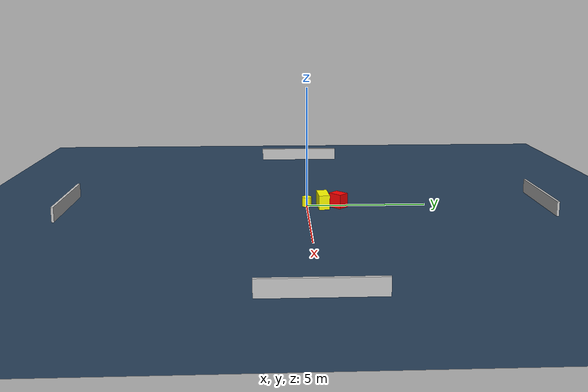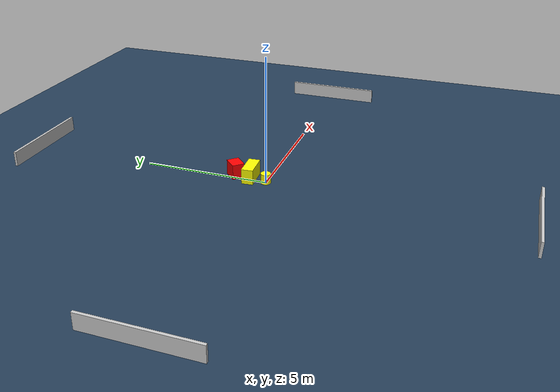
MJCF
<?xml version="1.0" ?>
<mujoco model="generated_environment">
  <option timestep="0.01" integrator="RK4" cone="elliptic"/>
  <default>
    <geom density="1"/>
  </default>
  <asset>
    <texture builtin="gradient" height="3072" name="skybox" rgb1="0.3 0.5 0.7" rgb2="0 0 0" type="skybox" width="512"/>
    <texture builtin="checker" height="300" name="groundplane" rgb1="0.2 0.3 0.4" rgb2="0.1 0.2 0.3" type="2d" width="300"/>
    <material name="groundplane" reflectance="0.2" texrepeat="5 5" texture="groundplane"/>
  </asset>
  <worldbody>
    <light dir="0 0 -1" directional="true" pos="0 0 1.5"/>
    <geom condim="3" friction="0.5 0.005 0.001" material="groundplane" name="floor" pos="0 0 0" size="0 0 0.05" type="plane"/>
    <body name="walls">
      <geom name="wall_1" condim="4" pos="-10.0 0.0 0.3" rgba="0.800000011920929 0.800000011920929 0.800000011920929 1.0" size="0.05 2.0 0.3" type="box"/>
      <geom name="wall_2" condim="4" pos="10.0 0.0 0.3" rgba="0.800000011920929 0.800000011920929 0.800000011920929 1.0" size="0.05 2.0 0.3" type="box"/>
      <geom name="wall_3" condim="4" pos="0.0 -10.0 0.3" rgba="0.800000011920929 0.800000011920929 0.800000011920929 1.0" size="2.0 0.05 0.3" type="box"/>
      <geom name="wall_4" condim="4" pos="0.0 10.0 0.3" rgba="0.800000011920929 0.800000011920929 0.800000011920929 1.0" size="2.0 0.05 0.3" type="box"/>
    </body>
    <body name="robot">
      <joint name="joint_x" type="slide" pos="0 0 0" axis="1 0 0"/>
      <joint name="joint_y" type="slide" pos="0 0 0" axis="0 1 0"/>
      <geom name="robot" type="cylinder" pos="0.0 0.0 0.2" size="0.2 0.2 0.0" mass="5.0" friction="1.0 0.005 0.0001" condim="4" rgba="1.0 1.0 0.0 1.0"/>
    </body>
    <body name="obstacle_1_movable">
      <geom name="obstacle_1_movable" condim="4" pos="0.1406975758501493 0.6665911931293854 0.3" euler="0 0 273.777548197341" friction="0.0 0.005 0.001" rgba="1.0 1.0 0.0 1.0" size="0.22670392585744126 0.5086079960330565 0.3" type="box" mass="0.1"/>
      <joint type="free"/>
    </body>
    <body name="obstacle_2_static">
      <geom name="obstacle_2_static" condim="4" pos="0.18468946862008698 1.3209013907828906 0.3" euler="0 0 224.4652467498063" friction="0.0 0.005 0.001" rgba="1.0 0.0 0.0 1.0" size="0.3029854179432724 0.24137193744863192 0.3" type="box"/>
    </body>
  </worldbody>
  <actuator>
    <motor name="actuator_x" joint="joint_x" gear="1" ctrlrange="-1 1"/>
    <motor name="actuator_y" joint="joint_y" gear="1" ctrlrange="-1 1"/>
  </actuator>
</mujoco>
